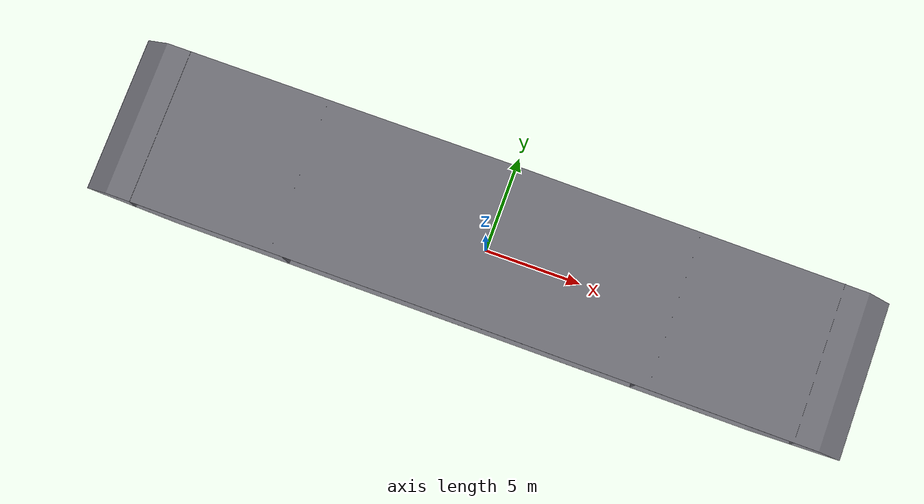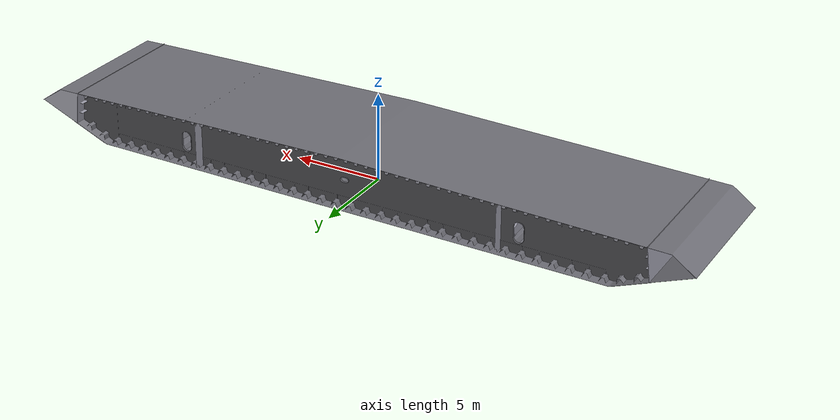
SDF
<?xml version='1.0' encoding='utf-8'?>
<sdf version="1.7">
  <world name="bridge_camera">
    <gravity>0 0 -9.81</gravity>
    <physics name="1ms" type="ignored">
      <max_step_size>0.001</max_step_size>
      <real_time_factor>1</real_time_factor>
    </physics>
    <plugin filename="ignition-gazebo-physics-system" name="ignition::gazebo::systems::Physics" />
    <plugin filename="ignition-gazebo-user-commands-system" name="ignition::gazebo::systems::UserCommands" />
    <plugin filename="ignition-gazebo-scene-broadcaster-system" name="ignition::gazebo::systems::SceneBroadcaster" />
    <plugin filename="ignition-gazebo-sensors-system" name="ignition::gazebo::systems::Sensors">
      <render_engine>ogre2</render_engine>
    </plugin>
    <scene>
      <ambient>0.5 0.5 0.5 1</ambient>
      <background>0.1 0.15 0.2 1</background>
    </scene>
    <light name="sun" type="directional">
      <pose>0 0 10 0 0 0</pose>
      <diffuse>0.8 0.8 0.8 1</diffuse>
      <specular>0.2 0.2 0.2 1</specular>
      <direction>-0.5 0.2 -1</direction>
    </light>
    <include>
      <uri>model://bridge</uri>
      <pose>0 0 0 1.5707963267948966 0 0</pose>
    </include>
    <light name="inspection_light" type="point">
      <pose>0 -1.5 1.8 0 0 0</pose>
      <diffuse>0.8 0.8 0.8 1</diffuse>
      <specular>0.1 0.1 0.1 1</specular>
      <attenuation>
        <range>12</range>
        <constant>0.6</constant>
        <linear>0.08</linear>
        <quadratic>0.01</quadratic>
      </attenuation>
    </light>
  </world>
</sdf>

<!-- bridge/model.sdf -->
<sdf version="1.6">
  <model name="bridge">
    <static>true</static>
    <link name="bridge_link">
      <visual name="bottom_plane_visual">
        <geometry>
          <mesh>
            <uri>model://bridge/meshes/bottom_plane.stl</uri>
            <scale>0.001 0.001 0.001</scale>
          </mesh>
        </geometry>
        <material>
          <ambient>0.43 0.43 0.46 1</ambient>
          <diffuse>0.43 0.43 0.46 1</diffuse>
          <specular>0.1 0.1 0.1 1</specular>
        </material>
      </visual>
      <collision name="bottom_plane_collision">
        <geometry>
          <mesh>
            <uri>model://bridge/meshes/bottom_plane.stl</uri>
            <scale>0.001 0.001 0.001</scale>
          </mesh>
        </geometry>
      </collision>
      <visual name="front_plane_01_visual">
        <geometry>
          <mesh>
            <uri>model://bridge/meshes/front_plane_01.stl</uri>
            <scale>0.001 0.001 0.001</scale>
          </mesh>
        </geometry>
        <material>
          <ambient>0.34 0.34 0.36 1</ambient>
          <diffuse>0.34 0.34 0.36 1</diffuse>
          <specular>0.1 0.1 0.1 1</specular>
        </material>
      </visual>
      <collision name="front_plane_01_collision">
        <geometry>
          <mesh>
            <uri>model://bridge/meshes/front_plane_01.stl</uri>
            <scale>0.001 0.001 0.001</scale>
          </mesh>
        </geometry>
      </collision>
      <visual name="front_plane_03_visual">
        <geometry>
          <mesh>
            <uri>model://bridge/meshes/front_plane_03.stl</uri>
            <scale>0.001 0.001 0.001</scale>
          </mesh>
        </geometry>
        <material>
          <ambient>0.34 0.34 0.36 1</ambient>
          <diffuse>0.34 0.34 0.36 1</diffuse>
          <specular>0.1 0.1 0.1 1</specular>
        </material>
      </visual>
      <collision name="front_plane_03_collision">
        <geometry>
          <mesh>
            <uri>model://bridge/meshes/front_plane_03.stl</uri>
            <scale>0.001 0.001 0.001</scale>
          </mesh>
        </geometry>
      </collision>
      <visual name="side_inner_left_01_visual">
        <geometry>
          <mesh>
            <uri>model://bridge/meshes/side_inner_left_01.stl</uri>
            <scale>0.001 0.001 0.001</scale>
          </mesh>
        </geometry>
        <material>
          <ambient>0.6 0.6 0.65 1</ambient>
          <diffuse>0.6 0.6 0.65 1</diffuse>
          <specular>0.1 0.1 0.1 1</specular>
        </material>
      </visual>
      <collision name="side_inner_left_01_collision">
        <geometry>
          <mesh>
            <uri>model://bridge/meshes/side_inner_left_01.stl</uri>
            <scale>0.001 0.001 0.001</scale>
          </mesh>
        </geometry>
      </collision>
      <visual name="side_inner_left_02_visual">
        <geometry>
          <mesh>
            <uri>model://bridge/meshes/side_inner_left_02.stl</uri>
            <scale>0.001 0.001 0.001</scale>
          </mesh>
        </geometry>
        <material>
          <ambient>0.6 0.6 0.65 1</ambient>
          <diffuse>0.6 0.6 0.65 1</diffuse>
          <specular>0.1 0.1 0.1 1</specular>
        </material>
      </visual>
      <collision name="side_inner_left_02_collision">
        <geometry>
          <mesh>
            <uri>model://bridge/meshes/side_inner_left_02.stl</uri>
            <scale>0.001 0.001 0.001</scale>
          </mesh>
        </geometry>
      </collision>
      <visual name="side_inner_left_03_visual">
        <geometry>
          <mesh>
            <uri>model://bridge/meshes/side_inner_left_03.stl</uri>
            <scale>0.001 0.001 0.001</scale>
          </mesh>
        </geometry>
        <material>
          <ambient>0.6 0.6 0.65 1</ambient>
          <diffuse>0.6 0.6 0.65 1</diffuse>
          <specular>0.1 0.1 0.1 1</specular>
        </material>
      </visual>
      <collision name="side_inner_left_03_collision">
        <geometry>
          <mesh>
            <uri>model://bridge/meshes/side_inner_left_03.stl</uri>
            <scale>0.001 0.001 0.001</scale>
          </mesh>
        </geometry>
      </collision>
      <visual name="side_inner_left_04_visual">
        <geometry>
          <mesh>
            <uri>model://bridge/meshes/side_inner_left_04.stl</uri>
            <scale>0.001 0.001 0.001</scale>
          </mesh>
        </geometry>
        <material>
          <ambient>0.6 0.6 0.65 1</ambient>
          <diffuse>0.6 0.6 0.65 1</diffuse>
          <specular>0.1 0.1 0.1 1</specular>
        </material>
      </visual>
      <collision name="side_inner_left_04_collision">
        <geometry>
          <mesh>
            <uri>model://bridge/meshes/side_inner_left_04.stl</uri>
            <scale>0.001 0.001 0.001</scale>
          </mesh>
        </geometry>
      </collision>
      <visual name="side_inner_right_01_visual">
        <geometry>
          <mesh>
            <uri>model://bridge/meshes/side_inner_right_01.stl</uri>
            <scale>0.001 0.001 0.001</scale>
          </mesh>
        </geometry>
        <material>
          <ambient>0.6 0.6 0.65 1</ambient>
          <diffuse>0.6 0.6 0.65 1</diffuse>
          <specular>0.1 0.1 0.1 1</specular>
        </material>
      </visual>
      <collision name="side_inner_right_01_collision">
        <geometry>
          <mesh>
            <uri>model://bridge/meshes/side_inner_right_01.stl</uri>
            <scale>0.001 0.001 0.001</scale>
          </mesh>
        </geometry>
      </collision>
      <visual name="side_inner_right_02_visual">
        <geometry>
          <mesh>
            <uri>model://bridge/meshes/side_inner_right_02.stl</uri>
            <scale>0.001 0.001 0.001</scale>
          </mesh>
        </geometry>
        <material>
          <ambient>0.6 0.6 0.65 1</ambient>
          <diffuse>0.6 0.6 0.65 1</diffuse>
          <specular>0.1 0.1 0.1 1</specular>
        </material>
      </visual>
      <collision name="side_inner_right_02_collision">
        <geometry>
          <mesh>
            <uri>model://bridge/meshes/side_inner_right_02.stl</uri>
            <scale>0.001 0.001 0.001</scale>
          </mesh>
        </geometry>
      </collision>
      <visual name="side_inner_right_03_visual">
        <geometry>
          <mesh>
            <uri>model://bridge/meshes/side_inner_right_03.stl</uri>
            <scale>0.001 0.001 0.001</scale>
          </mesh>
        </geometry>
        <material>
          <ambient>0.6 0.6 0.65 1</ambient>
          <diffuse>0.6 0.6 0.65 1</diffuse>
          <specular>0.1 0.1 0.1 1</specular>
        </material>
      </visual>
      <collision name="side_inner_right_03_collision">
        <geometry>
          <mesh>
            <uri>model://bridge/meshes/side_inner_right_03.stl</uri>
            <scale>0.001 0.001 0.001</scale>
          </mesh>
        </geometry>
      </collision>
      <visual name="side_inner_right_04_visual">
        <geometry>
          <mesh>
            <uri>model://bridge/meshes/side_inner_right_04.stl</uri>
            <scale>0.001 0.001 0.001</scale>
          </mesh>
        </geometry>
        <material>
          <ambient>0.6 0.6 0.65 1</ambient>
          <diffuse>0.6 0.6 0.65 1</diffuse>
          <specular>0.1 0.1 0.1 1</specular>
        </material>
      </visual>
      <collision name="side_inner_right_04_collision">
        <geometry>
          <mesh>
            <uri>model://bridge/meshes/side_inner_right_04.stl</uri>
            <scale>0.001 0.001 0.001</scale>
          </mesh>
        </geometry>
      </collision>
      <visual name="side_outer_left_visual">
        <geometry>
          <mesh>
            <uri>model://bridge/meshes/side_outer_left.stl</uri>
            <scale>0.001 0.001 0.001</scale>
          </mesh>
        </geometry>
        <material>
          <ambient>0.6 0.6 0.65 1</ambient>
          <diffuse>0.6 0.6 0.65 1</diffuse>
          <specular>0.1 0.1 0.1 1</specular>
        </material>
      </visual>
      <collision name="side_outer_left_collision">
        <geometry>
          <mesh>
            <uri>model://bridge/meshes/side_outer_left.stl</uri>
            <scale>0.001 0.001 0.001</scale>
          </mesh>
        </geometry>
      </collision>
      <visual name="side_outer_right_visual">
        <geometry>
          <mesh>
            <uri>model://bridge/meshes/side_outer_right.stl</uri>
            <scale>0.001 0.001 0.001</scale>
          </mesh>
        </geometry>
        <material>
          <ambient>0.6 0.6 0.65 1</ambient>
          <diffuse>0.6 0.6 0.65 1</diffuse>
          <specular>0.1 0.1 0.1 1</specular>
        </material>
      </visual>
      <collision name="side_outer_right_collision">
        <geometry>
          <mesh>
            <uri>model://bridge/meshes/side_outer_right.stl</uri>
            <scale>0.001 0.001 0.001</scale>
          </mesh>
        </geometry>
      </collision>
      <visual name="top_plane_visual">
        <geometry>
          <mesh>
            <uri>model://bridge/meshes/top_plane.stl</uri>
            <scale>0.001 0.001 0.001</scale>
          </mesh>
        </geometry>
        <material>
          <ambient>0.43 0.43 0.46 1</ambient>
          <diffuse>0.43 0.43 0.46 1</diffuse>
          <specular>0.1 0.1 0.1 1</specular>
        </material>
      </visual>
      <collision name="top_plane_collision">
        <geometry>
          <mesh>
            <uri>model://bridge/meshes/top_plane.stl</uri>
            <scale>0.001 0.001 0.001</scale>
          </mesh>
        </geometry>
      </collision>
    </link>
  </model>
</sdf>
